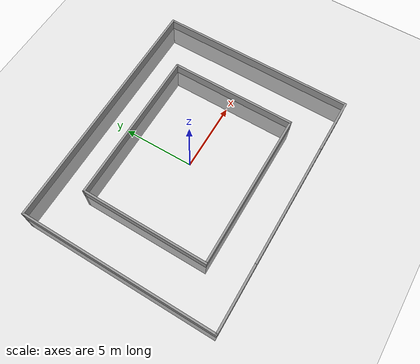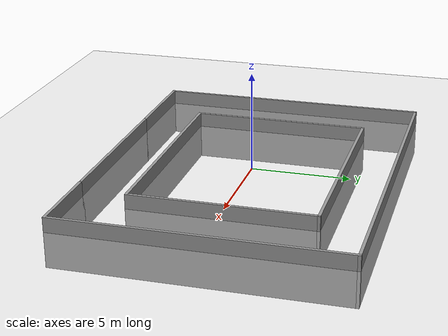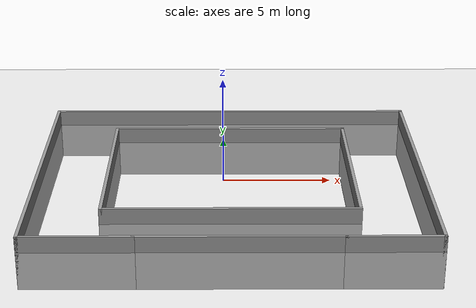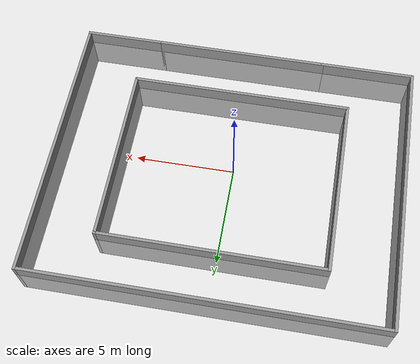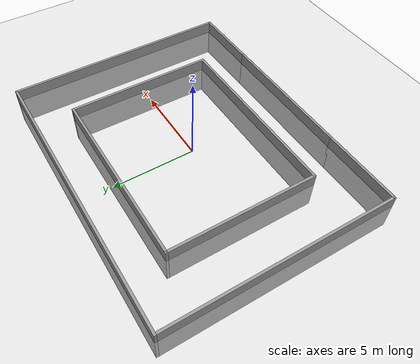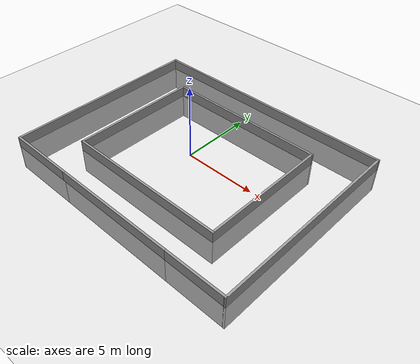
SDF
<sdf version="1.7">
 <world name="default">
  <light name="sun" type="directional">
   <pose>0 0 10 0 -0 0</pose>
   <diffuse>0.8 0.8 0.8 1</diffuse>
   <specular>0.2 0.2 0.2 1</specular>
   <attenuation>
    <range>1000</range>
    <constant>0.9</constant>
    <linear>0.01</linear>
    <quadratic>0.001</quadratic>
   </attenuation>
   <direction>-0.5 0.1 -0.9</direction>
   <spot><inner_angle>0</inner_angle><outer_angle>0</outer_angle><falloff>0</falloff></spot>
  </light>
  <model name="ground_plane">
   <static>1</static>
   <link name="link">
    <collision name="collision">
     <geometry><plane><normal>0 0 1</normal><size>100 100</size></plane></geometry>
     <surface>
      <contact><collide_bitmask>65535</collide_bitmask></contact>
      <friction><ode><mu>100</mu><mu2>50</mu2></ode></friction>
     </surface>
    </collision>
    <visual name="visual">
     <cast_shadows>0</cast_shadows>
     <geometry><plane><normal>0 0 1</normal><size>100 100</size></plane></geometry>
     <material>
      <script><uri>file://media/materials/scripts/gazebo.material</uri><name>Gazebo/Grey</name></script>
     </material>
    </visual>
   </link>
  </model>
  <gravity>0 0 -9.8</gravity>
  <magnetic_field>6e-06 2.3e-05 -4.2e-05</magnetic_field>
  <atmosphere type="adiabatic"/>
  <physics type="ode">
   <max_step_size>0.001</max_step_size>
   <real_time_factor>1</real_time_factor>
   <real_time_update_rate>1000</real_time_update_rate>
  </physics>
  <scene><ambient>0.4 0.4 0.4 1</ambient><background>0.7 0.7 0.7 1</background><shadows>1</shadows></scene>
  <spherical_coordinates>
   <surface_model>EARTH_WGS84</surface_model>
   <latitude_deg>0</latitude_deg>
   <longitude_deg>0</longitude_deg>
   <elevation>0</elevation>
   <heading_deg>0</heading_deg>
  </spherical_coordinates>
  <model name="simple_box">
   <pose>0.336114 0.041089 -1.77928 0 -0 0</pose>
   <link name="Wall_11">
    <collision name="Wall_11_Collision">
     <geometry><box><size>9.05 0.15 2.5</size></box></geometry>
     <pose>0 0 1.25 0 -0 0</pose>
    </collision>
    <visual name="Wall_11_Visual">
     <pose>0 0 1.25 0 -0 0</pose>
     <geometry><box><size>9.05 0.15 2.5</size></box></geometry>
     <material>
      <script><uri>file://media/materials/scripts/gazebo.material</uri><name>Gazebo/Grey</name></script>
      <ambient>1 1 1 1</ambient>
     </material>
     <meta><layer>0</layer></meta>
    </visual>
    <pose>0.375 -7.05 0 0 -0 0</pose>
   </link>
   <link name="Wall_13">
    <collision name="Wall_13_Collision">
     <geometry><box><size>9.25 0.15 2.5</size></box></geometry>
     <pose>0 0 1.25 0 -0 0</pose>
    </collision>
    <visual name="Wall_13_Visual">
     <pose>0 0 1.25 0 -0 0</pose>
     <geometry><box><size>9.25 0.15 2.5</size></box></geometry>
     <material>
      <script><uri>file://media/materials/scripts/gazebo.material</uri><name>Gazebo/Grey</name></script>
      <ambient>1 1 1 1</ambient>
     </material>
     <meta><layer>0</layer></meta>
    </visual>
    <pose>-5.68143 0.111513 0 0 -0 -1.5708</pose>
   </link>
   <link name="Wall_14">
    <collision name="Wall_14_Collision">
     <geometry><box><size>11.5 0.15 2.5</size></box></geometry>
     <pose>0 0 1.25 0 -0 0</pose>
    </collision>
    <visual name="Wall_14_Visual">
     <pose>0 0 1.25 0 -0 0</pose>
     <geometry><box><size>11.5 0.15 2.5</size></box></geometry>
     <material>
      <script><uri>file://media/materials/scripts/gazebo.material</uri><name>Gazebo/Grey</name></script>
      <ambient>1 1 1 1</ambient>
     </material>
     <meta><layer>0</layer></meta>
    </visual>
    <pose>-0.006433 -4.43849 0 0 -0 0</pose>
   </link>
   <link name="Wall_15">
    <collision name="Wall_15_Collision">
     <geometry><box><size>9.25 0.15 2.5</size></box></geometry>
     <pose>0 0 1.25 0 -0 0</pose>
    </collision>
    <visual name="Wall_15_Visual">
     <pose>0 0 1.25 0 -0 0</pose>
     <geometry><box><size>9.25 0.15 2.5</size></box></geometry>
     <material>
      <script><uri>file://media/materials/scripts/gazebo.material</uri><name>Gazebo/Grey</name></script>
      <ambient>1 1 1 1</ambient>
     </material>
     <meta><layer>0</layer></meta>
    </visual>
    <pose>5.66857 0.111513 0 0 -0 1.5708</pose>
   </link>
   <link name="Wall_16">
    <collision name="Wall_16_Collision">
     <geometry><box><size>11.5 0.15 2.5</size></box></geometry>
     <pose>0 0 1.25 0 -0 0</pose>
    </collision>
    <visual name="Wall_16_Visual">
     <pose>0 0 1.25 0 -0 0</pose>
     <geometry><box><size>11.5 0.15 2.5</size></box></geometry>
     <material>
      <script><uri>file://media/materials/scripts/gazebo.material</uri><name>Gazebo/Grey</name></script>
      <ambient>1 1 1 1</ambient>
     </material>
     <meta><layer>0</layer></meta>
    </visual>
    <pose>-0.006433 4.66151 0 0 -0 3.14159</pose>
   </link>
   <link name="Wall_5">
    <collision name="Wall_5_Collision">
     <geometry><box><size>4.25 0.15 2.5</size></box></geometry>
     <pose>0 0 1.25 0 -0 0</pose>
    </collision>
    <visual name="Wall_5_Visual">
     <pose>0 0 1.25 0 -0 0</pose>
     <geometry><box><size>4.25 0.15 2.5</size></box></geometry>
     <material>
      <script><uri>file://media/materials/scripts/gazebo.material</uri><name>Gazebo/Grey</name></script>
      <ambient>1 1 1 1</ambient>
     </material>
     <meta><layer>0</layer></meta>
    </visual>
    <pose>6.875 -7.05 0 0 -0 0</pose>
   </link>
   <link name="Wall_6">
    <collision name="Wall_6_Collision">
     <geometry><box><size>14.25 0.15 2.5</size></box></geometry>
     <pose>0 0 1.25 0 -0 0</pose>
    </collision>
    <visual name="Wall_6_Visual">
     <pose>0 0 1.25 0 -0 0</pose>
     <geometry><box><size>14.25 0.15 2.5</size></box></geometry>
     <material>
      <script><uri>file://media/materials/scripts/gazebo.material</uri><name>Gazebo/Grey</name></script>
      <ambient>1 1 1 1</ambient>
     </material>
     <meta><layer>0</layer></meta>
    </visual>
    <pose>8.925 -0 0 0 -0 1.5708</pose>
   </link>
   <link name="Wall_7">
    <collision name="Wall_7_Collision">
     <geometry><box><size>18 0.15 2.5</size></box></geometry>
     <pose>0 0 1.25 0 -0 0</pose>
    </collision>
    <visual name="Wall_7_Visual">
     <pose>0 0 1.25 0 -0 0</pose>
     <geometry><box><size>18 0.15 2.5</size></box></geometry>
     <material>
      <script><uri>file://media/materials/scripts/gazebo.material</uri><name>Gazebo/Grey</name></script>
      <ambient>1 1 1 1</ambient>
     </material>
     <meta><layer>0</layer></meta>
    </visual>
    <pose>-0 7.05 0 0 -0 3.14159</pose>
   </link>
   <link name="Wall_8">
    <collision name="Wall_8_Collision">
     <geometry><box><size>14.25 0.15 2.5</size></box></geometry>
     <pose>0 0 1.25 0 -0 0</pose>
    </collision>
    <visual name="Wall_8_Visual">
     <pose>0 0 1.25 0 -0 0</pose>
     <geometry><box><size>14.25 0.15 2.5</size></box></geometry>
     <material>
      <script><uri>file://media/materials/scripts/gazebo.material</uri><name>Gazebo/Grey</name></script>
      <ambient>1 1 1 1</ambient>
     </material>
     <meta><layer>0</layer></meta>
    </visual>
    <pose>-8.925 -0 0 0 -0 -1.5708</pose>
   </link>
   <link name="Wall_9">
    <collision name="Wall_9_Collision">
     <geometry><box><size>5 0.15 2.5</size></box></geometry>
     <pose>0 0 1.25 0 -0 0</pose>
    </collision>
    <visual name="Wall_9_Visual">
     <pose>0 0 1.25 0 -0 0</pose>
     <geometry><box><size>5 0.15 2.5</size></box></geometry>
     <material>
      <script><uri>file://media/materials/scripts/gazebo.material</uri><name>Gazebo/Grey</name></script>
      <ambient>1 1 1 1</ambient>
     </material>
     <meta><layer>0</layer></meta>
    </visual>
    <pose>-6.5 -7.05 0 0 -0 0</pose>
   </link>
   <static>1</static>
  </model>
 </world>
</sdf>
